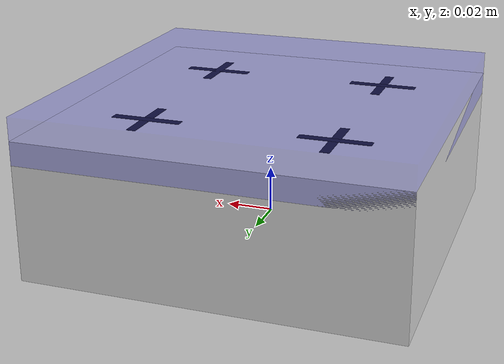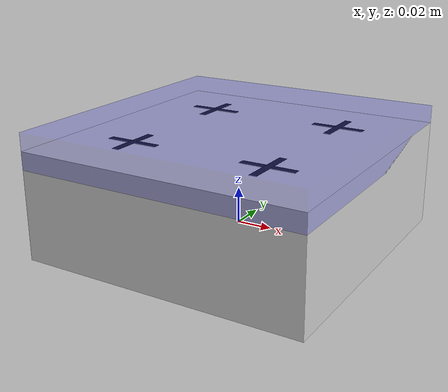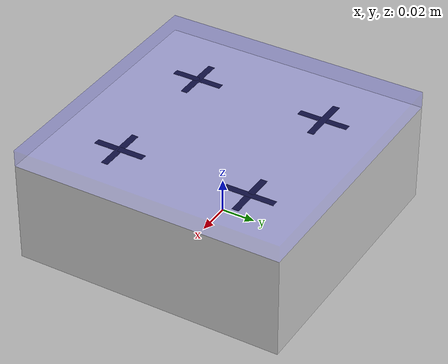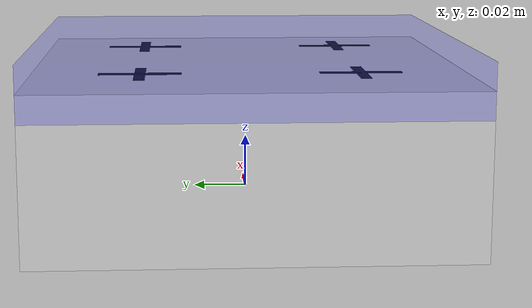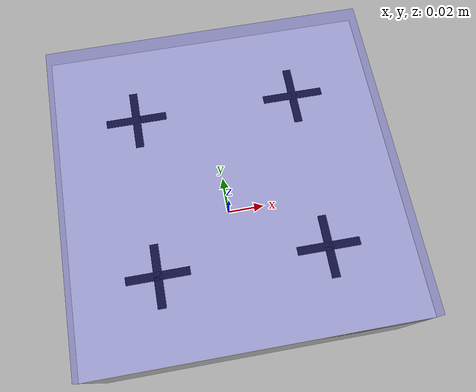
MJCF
<mujoco model="pump_bottle_plate">
  <worldbody>
    <body>
        <body name="object" pos="0 0 0">
            <body name="pump_bottle_plate" pos="0 0 0.0196" quat="1 0 0 0">
                <inertial pos="0 0 0" mass="0.5" diaginertia="1e-3 1e-3 1e-3" />

                <geom name="pump_bottle_plate_geom" type="box" size="0.08 0.08 0.03" rgba="0.8 0.8 0.8 1" friction="0.6 0.005 0.001" group="1" conaffinity="1" contype="1"/>

                <site name="goal_region" type="box" size="0.08 0.08 0.01" pos="0 0 0.03" quat="1 0 0 0" rgba="0 0 1 0.2" group="0" />

                <geom name="cross1_h" type="box" size="0.015 0.002 0.0001" pos="0.04 0.04 0.031" rgba="0.1 0.1 0.1 1" conaffinity="0" contype="0" group="1"/>
                <geom name="cross1_v" type="box" size="0.002 0.015 0.0001" pos="0.04 0.04 0.031" rgba="0.1 0.1 0.1 1" conaffinity="0" contype="0" group="1"/>
                <site name="cross1_center" type="box" pos="0.04 0.04 0.031" quat="1 0 0 0" size="0.015 0.015 0.005" rgba="0 0 0 0"/>

                <geom name="cross2_h" type="box" size="0.015 0.002 0.0001" pos="-0.04 0.04 0.031" rgba="0.1 0.1 0.1 1" conaffinity="0" contype="0" group="1"/>
                <geom name="cross2_v" type="box" size="0.002 0.015 0.0001" pos="-0.04 0.04 0.031" rgba="0.1 0.1 0.1 1" conaffinity="0" contype="0" group="1"/>
                <site name="cross2_center" type="box" pos="-0.04 0.04 0.031" quat="1 0 0 0" size="0.015 0.015 0.005" rgba="0 0 0 0"/>

                <geom name="cross3_h" type="box" size="0.015 0.002 0.0001" pos="-0.04 -0.04 0.031" rgba="0.1 0.1 0.1 1" conaffinity="0" contype="0" group="1"/>
                <geom name="cross3_v" type="box" size="0.002 0.015 0.0001" pos="-0.04 -0.04 0.031" rgba="0.1 0.1 0.1 1" conaffinity="0" contype="0" group="1"/>
                <site name="cross3_center" type="box" pos="-0.04 -0.04 0.031" quat="1 0 0 0" size="0.015 0.015 0.005" rgba="0 0 0 0"/>

                <geom name="cross4_h" type="box" size="0.015 0.002 0.0001" pos="0.04 -0.04 0.031" rgba="0.1 0.1 0.1 1" conaffinity="0" contype="0" group="1"/>
                <geom name="cross4_v" type="box" size="0.002 0.015 0.0001" pos="0.04 -0.04 0.031" rgba="0.1 0.1 0.1 1" conaffinity="0" contype="0" group="1"/>
                <site name="cross4_center" type="box" pos="0.04 -0.04 0.031" quat="1 0 0 0" size="0.015 0.015 0.005" rgba="0 0 0 0"/>
            </body>
        </body>

      <site rgba="0 0 0 0" size="0.01" pos="0 0 -0.01" quat="1 0 0 0" name="bottom_site"/>
      <site rgba="0 0 0 0" size="0.01" pos="0 0 0.01" quat="1 0 0 0" name="top_site"/>
      <site rgba="0 0 0 0" size="0.01" pos="0.08 0 0" quat="1 0 0 0" name="horizontal_radius_site"/>
    </body>
  </worldbody>
</mujoco>
